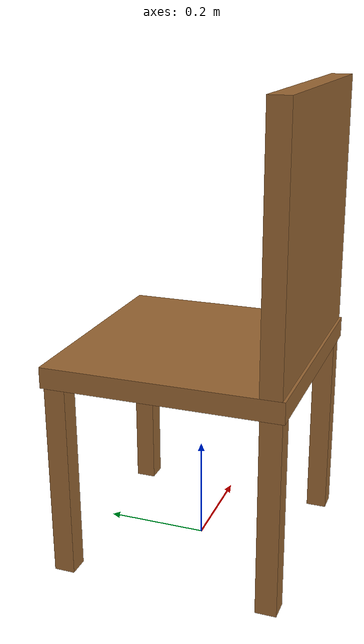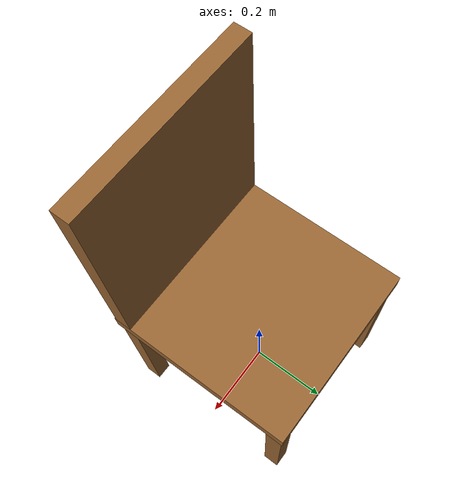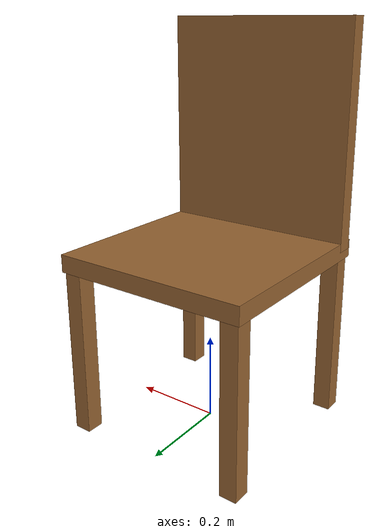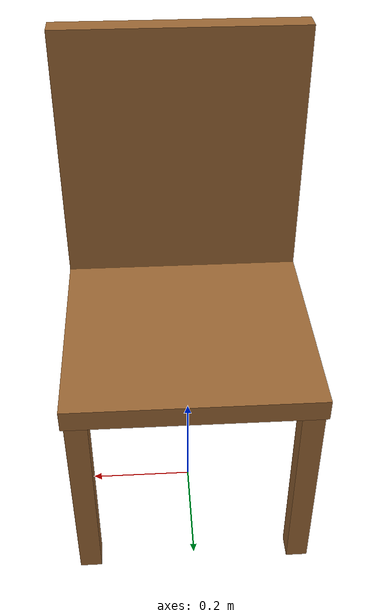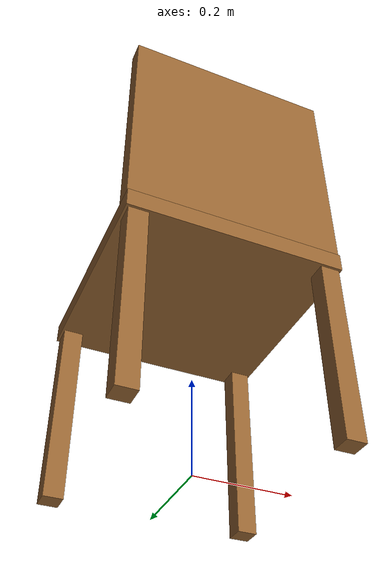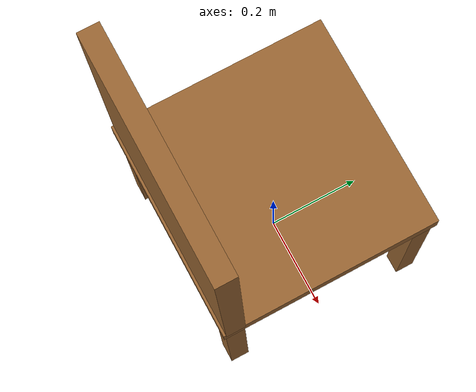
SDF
<?xml version='1.0' ?>
<!-- Chair model
Toyota Research Institute-->
<!-- Model definition: chair_v0/chair_v0.sdf -->
<sdf version='1.6'>
  <model name="chair_v1">
    <pose>0.0 0.0 0 0 0 0</pose>

    <link name='chair'>
      <pose>0.0 0.0 0 0 0 0</pose>
      <inertial>
        <mass>3</mass>
      </inertial>
      <visual name="box_leg">
        <pose>0.2 0.2 0.2 0 0 0</pose>
        <geometry>
          <box>
            <size>0.04 0.04 0.4</size>
          </box>
        </geometry>
        <material>
          <diffuse>0.6 0.4 0.2 1</diffuse>
        </material>
      </visual>

      <visual name="box_leg2">
        <pose>0.2 -0.2 0.2 0 0 0</pose>
        <geometry>
          <box>
            <size>0.04 0.04 0.4</size>
          </box>
        </geometry>
        <material>
          <diffuse>0.6 0.4 0.2 1</diffuse>
        </material>
      </visual>

      <visual name="box_leg3">
        <pose>-0.2 0.2 0.2 0 0 0</pose>
        <geometry>
          <box>
            <size>0.04 0.04 0.4</size>
          </box>
        </geometry>
        <material>
          <diffuse>0.6 0.4 0.2 1</diffuse>
        </material>
      </visual>

      <visual name="box_leg4">
        <pose>-0.2 -0.2 0.2 0 0 0</pose>
        <geometry>
          <box>
            <size>0.04 0.04 0.4</size>
          </box>
        </geometry>
        <material>
          <diffuse>0.6 0.4 0.2 1</diffuse>
        </material>
      </visual>

      <visual name="box_seat">
        <pose>0 0 0.4 0 0 0</pose>
        <geometry>
          <box>
            <size>0.45 0.45 0.04</size>
          </box>
        </geometry>
        <material>
          <diffuse>0.6 0.4 0.2 1</diffuse>
        </material>
      </visual>

      <visual name="box_back">
        <pose>0 -0.2 0.65 0 0 0</pose>
        <geometry>
          <box>
            <size>0.45 0.04 0.5</size>
          </box>
        </geometry>
        <material>
          <diffuse>0.6 0.4 0.2 1</diffuse>
        </material>
      </visual>

      <collision name="col_box_leg">
        <pose>0.2 0.2 0.2 0 0 0</pose>
        <geometry>
          <box>
            <size>0.04 0.04 0.4</size>
          </box>
        </geometry>
        <drake:proximity_properties>
          <drake:rigid_hydroelastic/>
          <drake:mesh_resolution_hint>1</drake:mesh_resolution_hint>
          <drake:mu_dynamic>1.0</drake:mu_dynamic>
          <drake:mu_static>1.0</drake:mu_static>
        </drake:proximity_properties>
      </collision>

      <collision name="col_box_leg2">
        <pose>0.2 -0.2 0.2 0 0 0</pose>
        <geometry>
          <box>
            <size>0.04 0.04 0.4</size>
          </box>
        </geometry>
        <drake:proximity_properties>
          <drake:rigid_hydroelastic/>
          <drake:mesh_resolution_hint>1</drake:mesh_resolution_hint>
          <drake:mu_dynamic>1.0</drake:mu_dynamic>
          <drake:mu_static>1.0</drake:mu_static>
        </drake:proximity_properties>
      </collision>

      <collision name="col_box_leg3">
        <pose>-0.2 0.2 0.2 0 0 0</pose>
        <geometry>
          <box>
            <size>0.04 0.04 0.4</size>
          </box>
        </geometry>
        <drake:proximity_properties>
          <drake:rigid_hydroelastic/>
          <drake:mesh_resolution_hint>1</drake:mesh_resolution_hint>
          <drake:mu_dynamic>1.0</drake:mu_dynamic>
          <drake:mu_static>1.0</drake:mu_static>
        </drake:proximity_properties>
      </collision>

      <collision name="col_box_leg4">
        <pose>-0.2 -0.2 0.2 0 0 0</pose>
        <geometry>
          <box>
            <size>0.04 0.04 0.4</size>
          </box>
        </geometry>
        <drake:proximity_properties>
          <drake:rigid_hydroelastic/>
          <drake:mesh_resolution_hint>1</drake:mesh_resolution_hint>
          <drake:mu_dynamic>1.0</drake:mu_dynamic>
          <drake:mu_static>1.0</drake:mu_static>
        </drake:proximity_properties>
      </collision>

      <collision name="col_box_seat">
        <pose>0 0 0.4 0 0 0</pose>
        <geometry>
          <box>
            <size>0.45 0.45 0.04</size>
          </box>
        </geometry>
        <drake:proximity_properties>
          <drake:rigid_hydroelastic/>
          <drake:mesh_resolution_hint>1</drake:mesh_resolution_hint>
          <drake:mu_dynamic>1.0</drake:mu_dynamic>
          <drake:mu_static>1.0</drake:mu_static>
        </drake:proximity_properties>
      </collision>

      <collision name="col_box_back">
        <pose>0 -0.2 0.6 0 0 0</pose>
        <geometry>
          <box>
            <size>0.45 0.04 0.45</size>
          </box>
        </geometry>
        <drake:proximity_properties>
          <drake:rigid_hydroelastic/>
          <drake:mesh_resolution_hint>1</drake:mesh_resolution_hint>
          <drake:mu_dynamic>1.0</drake:mu_dynamic>
          <drake:mu_static>1.0</drake:mu_static>
        </drake:proximity_properties>
      </collision>
    </link>
  </model>
</sdf>
